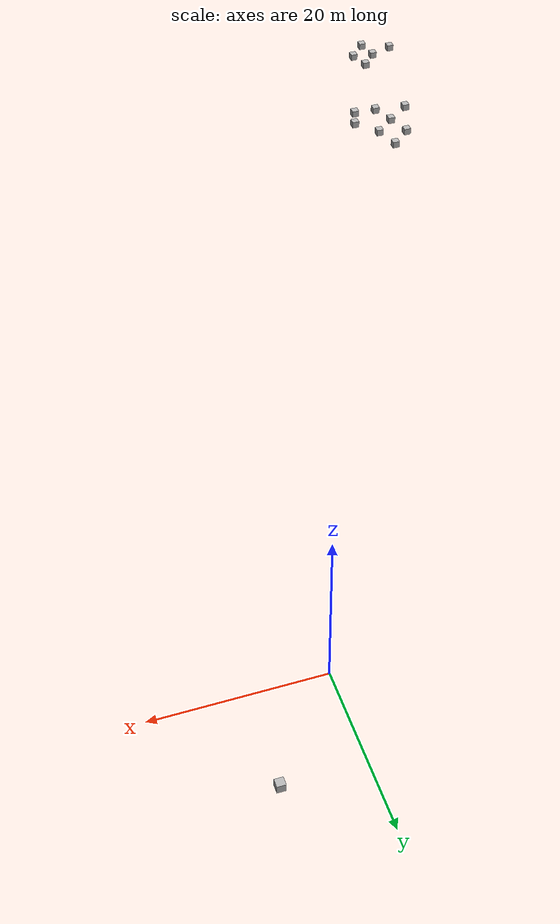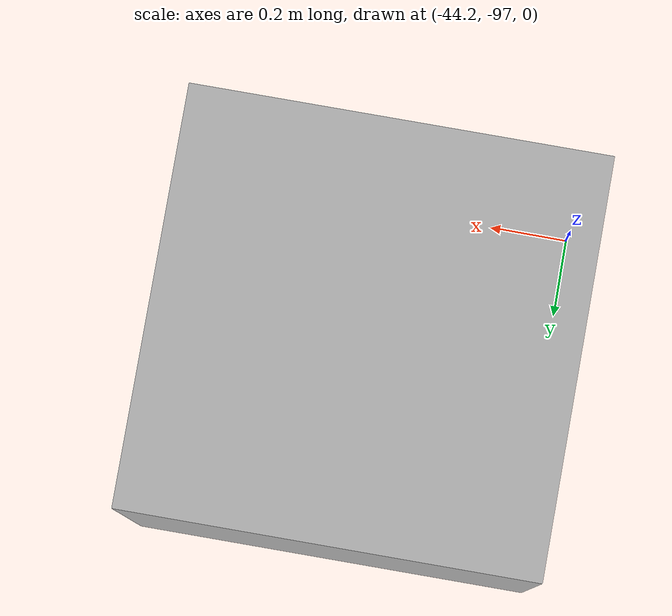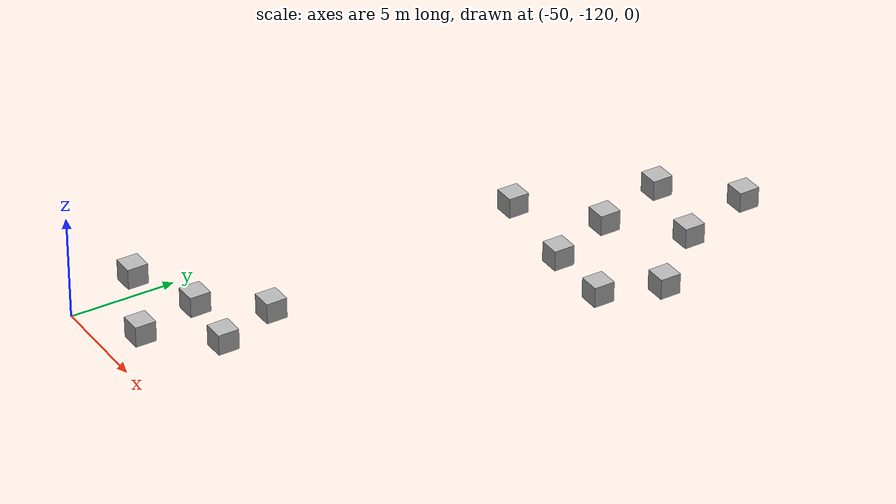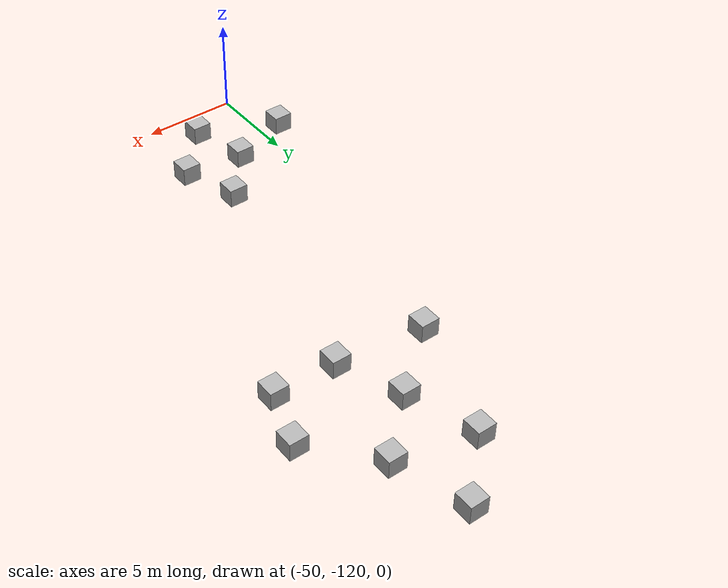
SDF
<sdf version="1.9">
 <world name="default">
  <plugin name="ignition::gazebo::systems::Physics" filename="libignition-gazebo-physics-system"/>
  <plugin name="ignition::gazebo::systems::Sensors" filename="libignition-gazebo-sensors-system">
   <render_engine>ogre2</render_engine>
  </plugin>
  <plugin name="ignition::gazebo::systems::UserCommands" filename="libignition-gazebo-user-commands-system"/>
  <plugin name="ignition::gazebo::systems::SceneBroadcaster" filename="libignition-gazebo-scene-broadcaster-system"/>
  <plugin name="ignition::gazebo::systems::Imu" filename="libignition-gazebo-imu-system.so"/>
  <plugin name="ignition::gazebo::systems::NavSat" filename="libignition-gazebo-navsat-system"/>
  <spherical_coordinates>
   <surface_model>EARTH_WGS84</surface_model>
   <world_frame_orientation>ENU</world_frame_orientation>
   <latitude_deg>17.4644400000003</latitude_deg>
   <longitude_deg>78.36638039729644</longitude_deg>
   <elevation>0</elevation>
   <heading_deg>0</heading_deg>
  </spherical_coordinates>
  <scene><shadows>false</shadows><ambient>0.4 0.4 0.4 1</ambient><background>0.7 0.7 0.7 1</background></scene>
  <physics type="ode">
   <real_time_update_rate>1000</real_time_update_rate>
   <max_step_size>0.01</max_step_size>
   <real_time_factor>1</real_time_factor>
   <ode>
    <solver>
     <type>quick</type>
     <iters>150</iters>
     <precon_iters>0</precon_iters>
     <sor>1.3999999999999999</sor>
     <use_dynamic_moi_rescaling>true</use_dynamic_moi_rescaling>
    </solver>
    <constraints>
     <cfm>1.0000000000000001e-05</cfm>
     <erp>0.20000000000000001</erp>
     <contact_max_correcting_vel>2000</contact_max_correcting_vel>
     <contact_surface_layer>0.01</contact_surface_layer>
    </constraints>
   </ode>
  </physics>
  <gravity>0 0 -9.8</gravity>
  <magnetic_field>6e-06 2.3e-05 -4.2e-05</magnetic_field>
  <atmosphere type="adiabatic"/>
  <model name="box">
   <pose>-42.4503 -99.8612 0.5 0 -0 0</pose>
   <link name="box_link">
    <inertial>
     <inertia><ixx>0.16666</ixx><ixy>0</ixy><ixz>0</ixz><iyy>0.16666</iyy><iyz>0</iyz><izz>0.16666</izz></inertia>
     <mass>1</mass>
    </inertial>
    <collision name="box_collision"><geometry><box><size>1 1 1</size></box></geometry></collision>
    <visual name="box_visual">
     <geometry><box><size>1 1 1</size></box></geometry>
     <material>
      <ambient>0.3 0.3 0.3 1</ambient>
      <diffuse>0.7 0.7 0.7 1</diffuse>
      <specular>1 1 1 1</specular>
     </material>
    </visual>
   </link>
   <static>false</static>
  </model>
  <model name="box_0">
   <pose>-38.1427 -97.1715 0.5 0 -0 0</pose>
   <link name="box_link">
    <inertial>
     <inertia><ixx>0.16666</ixx><ixy>0</ixy><ixz>0</ixz><iyy>0.16666</iyy><iyz>0</iyz><izz>0.16666</izz></inertia>
     <mass>1</mass>
    </inertial>
    <collision name="box_collision"><geometry><box><size>1 1 1</size></box></geometry></collision>
    <visual name="box_visual">
     <geometry><box><size>1 1 1</size></box></geometry>
     <material>
      <ambient>0.3 0.3 0.3 1</ambient>
      <diffuse>0.7 0.7 0.7 1</diffuse>
      <specular>1 1 1 1</specular>
     </material>
    </visual>
   </link>
   <static>false</static>
  </model>
  <model name="box_1">
   <pose>-43.7393 -96.5769 0.5 0 -0 0</pose>
   <link name="box_link">
    <inertial>
     <inertia><ixx>0.16666</ixx><ixy>0</ixy><ixz>0</ixz><iyy>0.16666</iyy><iyz>0</iyz><izz>0.16666</izz></inertia>
     <mass>1</mass>
    </inertial>
    <collision name="box_collision"><geometry><box><size>1 1 1</size></box></geometry></collision>
    <visual name="box_visual">
     <geometry><box><size>1 1 1</size></box></geometry>
     <material>
      <ambient>0.3 0.3 0.3 1</ambient>
      <diffuse>0.7 0.7 0.7 1</diffuse>
      <specular>1 1 1 1</specular>
     </material>
    </visual>
   </link>
   <static>false</static>
  </model>
  <model name="box_2">
   <pose>-40.8884 -93.9895 0.5 0 -0 0</pose>
   <link name="box_link">
    <inertial>
     <inertia><ixx>0.16666</ixx><ixy>0</ixy><ixz>0</ixz><iyy>0.16666</iyy><iyz>0</iyz><izz>0.16666</izz></inertia>
     <mass>1</mass>
    </inertial>
    <collision name="box_collision"><geometry><box><size>1 1 1</size></box></geometry></collision>
    <visual name="box_visual">
     <geometry><box><size>1 1 1</size></box></geometry>
     <material>
      <ambient>0.3 0.3 0.3 1</ambient>
      <diffuse>0.7 0.7 0.7 1</diffuse>
      <specular>1 1 1 1</specular>
     </material>
    </visual>
   </link>
   <static>false</static>
  </model>
  <model name="box_3">
   <pose>-42.0462 -90.2469 0.5 0 -0 0</pose>
   <link name="box_link">
    <inertial>
     <inertia><ixx>0.16666</ixx><ixy>0</ixy><ixz>0</ixz><iyy>0.16666</iyy><iyz>0</iyz><izz>0.16666</izz></inertia>
     <mass>1</mass>
    </inertial>
    <collision name="box_collision"><geometry><box><size>1 1 1</size></box></geometry></collision>
    <visual name="box_visual">
     <geometry><box><size>1 1 1</size></box></geometry>
     <material>
      <ambient>0.3 0.3 0.3 1</ambient>
      <diffuse>0.7 0.7 0.7 1</diffuse>
      <specular>1 1 1 1</specular>
     </material>
    </visual>
   </link>
   <static>false</static>
  </model>
  <model name="box_4">
   <pose>-44.8957 -92.9788 0.5 0 -0 0</pose>
   <link name="box_link">
    <inertial>
     <inertia><ixx>0.16666</ixx><ixy>0</ixy><ixz>0</ixz><iyy>0.16666</iyy><iyz>0</iyz><izz>0.16666</izz></inertia>
     <mass>1</mass>
    </inertial>
    <collision name="box_collision"><geometry><box><size>1 1 1</size></box></geometry></collision>
    <visual name="box_visual">
     <geometry><box><size>1 1 1</size></box></geometry>
     <material>
      <ambient>0.3 0.3 0.3 1</ambient>
      <diffuse>0.7 0.7 0.7 1</diffuse>
      <specular>1 1 1 1</specular>
     </material>
    </visual>
   </link>
   <static>false</static>
  </model>
  <model name="box_5">
   <pose>-47.0816 -99.2564 0.5 0 -0 0</pose>
   <link name="box_link">
    <inertial>
     <inertia><ixx>0.16666</ixx><ixy>0</ixy><ixz>0</ixz><iyy>0.16666</iyy><iyz>0</iyz><izz>0.16666</izz></inertia>
     <mass>1</mass>
    </inertial>
    <collision name="box_collision"><geometry><box><size>1 1 1</size></box></geometry></collision>
    <visual name="box_visual">
     <geometry><box><size>1 1 1</size></box></geometry>
     <material>
      <ambient>0.3 0.3 0.3 1</ambient>
      <diffuse>0.7 0.7 0.7 1</diffuse>
      <specular>1 1 1 1</specular>
     </material>
    </visual>
   </link>
   <static>false</static>
  </model>
  <model name="box_6">
   <pose>-39.1312 -99.9644 0.5 0 -0 0</pose>
   <link name="box_link">
    <inertial>
     <inertia><ixx>0.16666</ixx><ixy>0</ixy><ixz>0</ixz><iyy>0.16666</iyy><iyz>0</iyz><izz>0.16666</izz></inertia>
     <mass>1</mass>
    </inertial>
    <collision name="box_collision"><geometry><box><size>1 1 1</size></box></geometry></collision>
    <visual name="box_visual">
     <geometry><box><size>1 1 1</size></box></geometry>
     <material>
      <ambient>0.3 0.3 0.3 1</ambient>
      <diffuse>0.7 0.7 0.7 1</diffuse>
      <specular>1 1 1 1</specular>
     </material>
    </visual>
   </link>
   <static>false</static>
  </model>
  <model name="box_7">
   <pose>-46.9567 -118.271 0.5 0 -0 0</pose>
   <link name="box_link">
    <inertial>
     <inertia><ixx>0.16666</ixx><ixy>0</ixy><ixz>0</ixz><iyy>0.16666</iyy><iyz>0</iyz><izz>0.16666</izz></inertia>
     <mass>1</mass>
    </inertial>
    <collision name="box_collision"><geometry><box><size>1 1 1</size></box></geometry></collision>
    <visual name="box_visual">
     <geometry><box><size>1 1 1</size></box></geometry>
     <material>
      <ambient>0.3 0.3 0.3 1</ambient>
      <diffuse>0.7 0.7 0.7 1</diffuse>
      <specular>1 1 1 1</specular>
     </material>
    </visual>
   </link>
   <static>false</static>
  </model>
  <model name="box_8">
   <pose>-44.5571 -115.558 0.5 0 -0 0</pose>
   <link name="box_link">
    <inertial>
     <inertia><ixx>0.16666</ixx><ixy>0</ixy><ixz>0</ixz><iyy>0.16666</iyy><iyz>0</iyz><izz>0.16666</izz></inertia>
     <mass>1</mass>
    </inertial>
    <collision name="box_collision"><geometry><box><size>1 1 1</size></box></geometry></collision>
    <visual name="box_visual">
     <geometry><box><size>1 1 1</size></box></geometry>
     <material>
      <ambient>0.3 0.3 0.3 1</ambient>
      <diffuse>0.7 0.7 0.7 1</diffuse>
      <specular>1 1 1 1</specular>
     </material>
    </visual>
   </link>
   <static>false</static>
  </model>
  <model name="box_9">
   <pose>-47.6851 -115.186 0.5 0 -0 0</pose>
   <link name="box_link">
    <inertial>
     <inertia><ixx>0.16666</ixx><ixy>0</ixy><ixz>0</ixz><iyy>0.16666</iyy><iyz>0</iyz><izz>0.16666</izz></inertia>
     <mass>1</mass>
    </inertial>
    <collision name="box_collision"><geometry><box><size>1 1 1</size></box></geometry></collision>
    <visual name="box_visual">
     <geometry><box><size>1 1 1</size></box></geometry>
     <material>
      <ambient>0.3 0.3 0.3 1</ambient>
      <diffuse>0.7 0.7 0.7 1</diffuse>
      <specular>1 1 1 1</specular>
     </material>
    </visual>
   </link>
   <static>false</static>
  </model>
  <model name="box_10">
   <pose>-45.5363 -112.629 0.5 0 -0 0</pose>
   <link name="box_link">
    <inertial>
     <inertia><ixx>0.16666</ixx><ixy>0</ixy><ixz>0</ixz><iyy>0.16666</iyy><iyz>0</iyz><izz>0.16666</izz></inertia>
     <mass>1</mass>
    </inertial>
    <collision name="box_collision"><geometry><box><size>1 1 1</size></box></geometry></collision>
    <visual name="box_visual">
     <geometry><box><size>1 1 1</size></box></geometry>
     <material>
      <ambient>0.3 0.3 0.3 1</ambient>
      <diffuse>0.7 0.7 0.7 1</diffuse>
      <specular>1 1 1 1</specular>
     </material>
    </visual>
   </link>
   <static>false</static>
  </model>
  <model name="box_11">
   <pose>-51.0416 -116.429 0.5 0 -0 0</pose>
   <link name="box_link">
    <inertial>
     <inertia><ixx>0.16666</ixx><ixy>0</ixy><ixz>0</ixz><iyy>0.16666</iyy><iyz>0</iyz><izz>0.16666</izz></inertia>
     <mass>1</mass>
    </inertial>
    <collision name="box_collision"><geometry><box><size>1 1 1</size></box></geometry></collision>
    <visual name="box_visual">
     <geometry><box><size>1 1 1</size></box></geometry>
     <material>
      <ambient>0.3 0.3 0.3 1</ambient>
      <diffuse>0.7 0.7 0.7 1</diffuse>
      <specular>1 1 1 1</specular>
     </material>
    </visual>
   </link>
   <static>false</static>
  </model>
  <model name="box_12">
   <pose>9.35 11.86 0.5 0 0 0</pose>
   <link name="box_link">
    <inertial>
     <inertia><ixx>0.16666</ixx><ixy>0</ixy><ixz>0</ixz><iyy>0.16666</iyy><iyz>0</iyz><izz>0.16666</izz></inertia>
     <mass>1</mass>
    </inertial>
    <collision name="box_collision"><geometry><box><size>1 1 1</size></box></geometry></collision>
    <visual name="box_visual">
     <geometry><box><size>1 1 1</size></box></geometry>
     <material>
      <ambient>0.3 0.3 0.3 1</ambient>
      <diffuse>0.7 0.7 0.7 1</diffuse>
      <specular>1 1 1 1</specular>
     </material>
    </visual>
   </link>
   <static>false</static>
  </model>
  <light name="sun" type="directional">
   <pose>0 0 10 0 -0 0</pose>
   <intensity>1</intensity>
   <direction>-0.5 0.1 -0.9</direction>
   <diffuse>0.8 0.8 0.8 1</diffuse>
   <specular>0.2 0.2 0.2 1</specular>
   <attenuation>
    <range>1000</range>
    <linear>0.01</linear>
    <constant>0.90000000000000002</constant>
    <quadratic>0.001</quadratic>
   </attenuation>
   <spot><inner_angle>0</inner_angle><outer_angle>0</outer_angle><falloff>0</falloff></spot>
  </light>
 </world>
</sdf>
